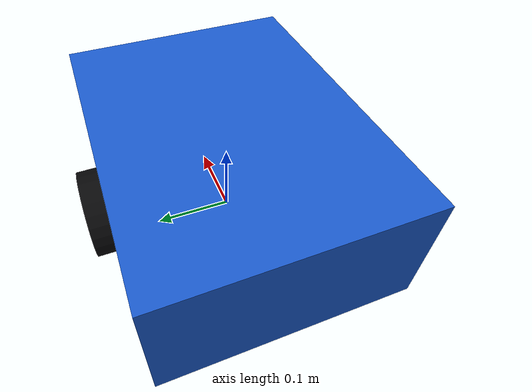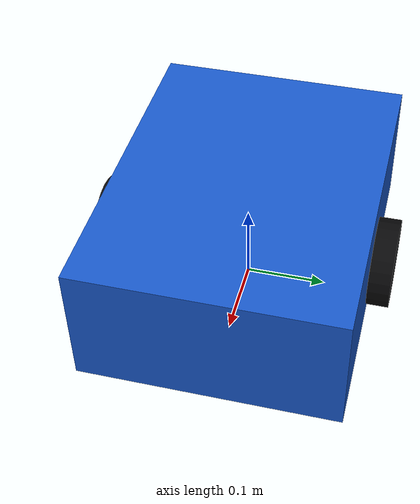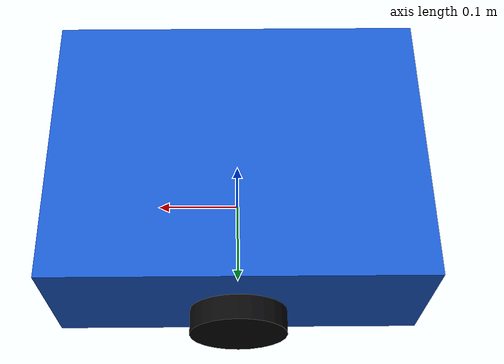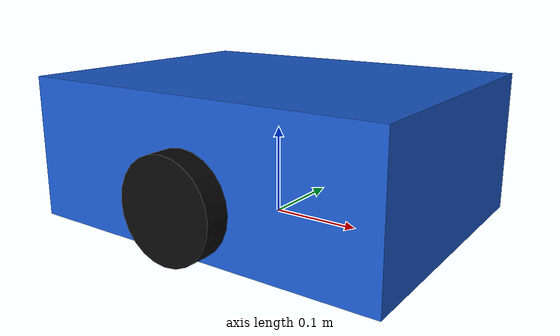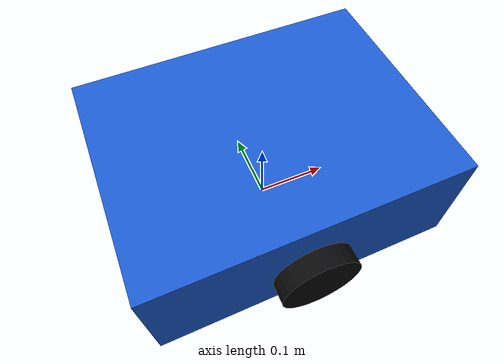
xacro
<?xml version="1.0"?>
<robot name="my_robot" xmlns:xacro="http://www.ros.org/wiki/xacro">
  <xacro:arg name="use_ros2_control" default="true"/>

  <xacro:property name="base_length" value="0.42"/>
  <xacro:property name="base_width" value="0.32"/>
  <xacro:property name="base_height" value="0.16"/>
  <xacro:property name="wheel_radius" value="0.055"/>
  <xacro:property name="wheel_width" value="0.035"/>
  <xacro:property name="wheel_separation" value="0.34"/>
  <xacro:property name="wheel_x" value="0.0"/>
  <xacro:property name="wheel_z" value="0.055"/>

  <material name="body_blue">
    <color rgba="0.1 0.35 0.8 1.0"/>
  </material>
  <material name="wheel_dark">
    <color rgba="0.03 0.03 0.035 1.0"/>
  </material>

  <link name="base_footprint"/>

  <joint name="base_footprint_joint" type="fixed">
    <parent link="base_footprint"/>
    <child link="base_link"/>
    <origin xyz="0 0 ${base_height / 2.0}" rpy="0 0 0"/>
  </joint>

  <link name="base_link">
    <visual>
      <origin xyz="0 0 0" rpy="0 0 0"/>
      <geometry>
        <box size="${base_length} ${base_width} ${base_height}"/>
      </geometry>
      <material name="body_blue"/>
    </visual>
    <collision>
      <origin xyz="0 0 0" rpy="0 0 0"/>
      <geometry>
        <box size="${base_length} ${base_width} ${base_height}"/>
      </geometry>
    </collision>
    <inertial>
      <origin xyz="0 0 0" rpy="0 0 0"/>
      <mass value="8.0"/>
      <inertia ixx="0.0907" ixy="0.0" ixz="0.0" iyy="0.1371" iyz="0.0" izz="0.1573"/>
    </inertial>
  </link>

  <xacro:macro name="wheel" params="prefix y">
    <link name="${prefix}_wheel_link">
      <visual>
        <origin xyz="0 0 0" rpy="${pi / 2.0} 0 0"/>
        <geometry>
          <cylinder radius="${wheel_radius}" length="${wheel_width}"/>
        </geometry>
        <material name="wheel_dark"/>
      </visual>
      <collision>
        <origin xyz="0 0 0" rpy="${pi / 2.0} 0 0"/>
        <geometry>
          <cylinder radius="${wheel_radius}" length="${wheel_width}"/>
        </geometry>
      </collision>
      <inertial>
        <origin xyz="0 0 0" rpy="0 0 0"/>
        <mass value="0.35"/>
        <inertia ixx="0.00035" ixy="0.0" ixz="0.0" iyy="0.00035" iyz="0.0" izz="0.00055"/>
      </inertial>
    </link>

    <joint name="${prefix}_wheel_joint" type="continuous">
      <parent link="base_link"/>
      <child link="${prefix}_wheel_link"/>
      <origin xyz="${wheel_x} ${y} ${wheel_z - base_height / 2.0}" rpy="0 0 0"/>
      <axis xyz="0 1 0"/>
    </joint>
  </xacro:macro>

  <xacro:wheel prefix="left" y="${wheel_separation / 2.0}"/>
  <xacro:wheel prefix="right" y="${-wheel_separation / 2.0}"/>

  <link name="caster_link">
    <visual>
      <origin xyz="0 0 0" rpy="0 0 0"/>
      <geometry>
        <sphere radius="0.026"/>
      </geometry>
      <material name="wheel_dark"/>
    </visual>
    <collision>
      <origin xyz="0 0 0" rpy="0 0 0"/>
      <geometry>
        <sphere radius="0.026"/>
      </geometry>
    </collision>
    <inertial>
      <origin xyz="0 0 0" rpy="0 0 0"/>
      <mass value="0.08"/>
      <inertia ixx="0.00002" ixy="0.0" ixz="0.0" iyy="0.00002" iyz="0.0" izz="0.00002"/>
    </inertial>
  </link>

  <joint name="caster_joint" type="fixed">
    <parent link="base_link"/>
    <child link="caster_link"/>
    <origin xyz="-0.16 0 ${0.026 - base_height / 2.0}" rpy="0 0 0"/>
  </joint>

  <link name="imu_link"/>
  <joint name="imu_joint" type="fixed">
    <parent link="base_link"/>
    <child link="imu_link"/>
    <origin xyz="0 0 0.03" rpy="0 0 0"/>
  </joint>

  <xacro:if value="$(arg use_ros2_control)">
    <ros2_control name="GazeboSystem" type="system">
      <hardware>
        <plugin>gazebo_ros2_control/GazeboSystem</plugin>
      </hardware>
      <joint name="left_wheel_joint">
        <command_interface name="velocity"/>
        <state_interface name="position"/>
        <state_interface name="velocity"/>
      </joint>
      <joint name="right_wheel_joint">
        <command_interface name="velocity"/>
        <state_interface name="position"/>
        <state_interface name="velocity"/>
      </joint>
    </ros2_control>

    <gazebo>
      <plugin name="gazebo_ros2_control" filename="libgazebo_ros2_control.so">
        <parameters>$(find my_robot_gazebo)/config/controllers.yaml</parameters>
      </plugin>
    </gazebo>
  </xacro:if>

  <gazebo>
    <plugin name="ground_truth_odom" filename="libgazebo_ros_p3d.so">
      <ros>
        <remapping>odom:=ground_truth/odom</remapping>
      </ros>
      <body_name>base_footprint</body_name>
      <frame_name>map</frame_name>
      <update_rate>30.0</update_rate>
      <gaussian_noise>0.0</gaussian_noise>
    </plugin>
  </gazebo>
</robot>
